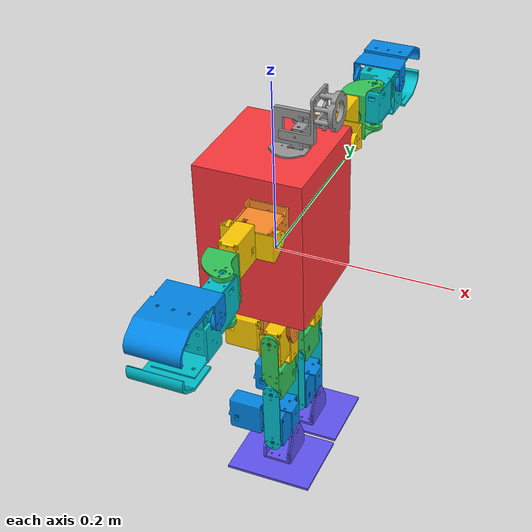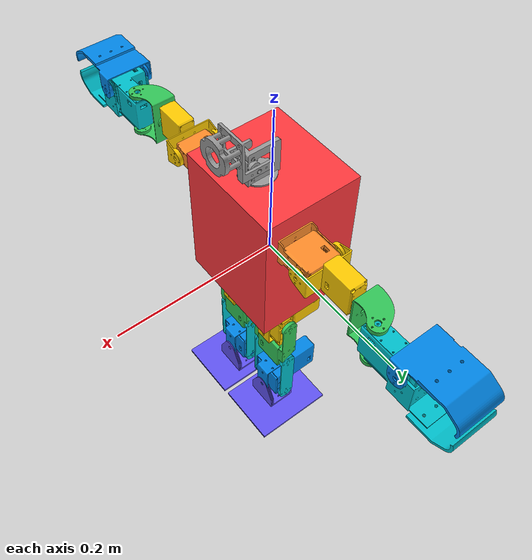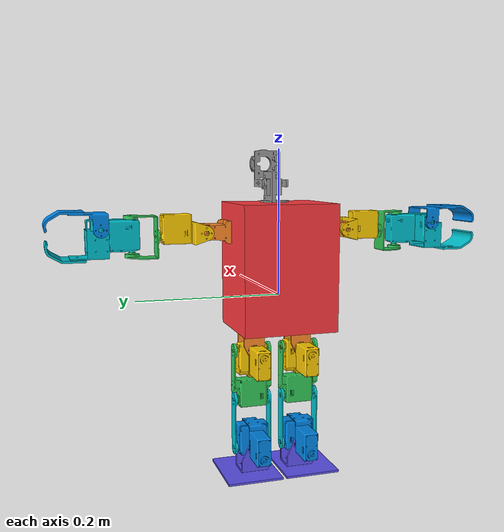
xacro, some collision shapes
<?xml version="1.0" ?>
<robot xmlns:xacro="http://ros.org/wiki/xacro" name="rhphumanoid">

  <xacro:arg name="use_gazebo" default="false" />
  <xacro:arg name="head_only" default="false" />
  <xacro:arg name="serial_ports" default="auto" />
  <xacro:arg name="servo_read_mode" default="initial" />
  <xacro:arg name="servo_reads_per_cycle" default="0" />

  <xacro:include filename="$(find rhphumanoid_description)/urdf/rhphumanoid.visuals.xacro" />
  <xacro:include filename="$(find rhphumanoid_description)/urdf/rhphumanoid.inertia.xacro" />

  <xacro:include filename="$(find rhphumanoid_description)/urdf/rhphumanoid.structure.rarm.xacro" />
  <xacro:include filename="$(find rhphumanoid_description)/urdf/rhphumanoid.structure.larm.xacro" />

  <xacro:include filename="$(find rhphumanoid_description)/urdf/rhphumanoid.structure.rleg.xacro" />
  <xacro:include filename="$(find rhphumanoid_description)/urdf/rhphumanoid.structure.lleg.xacro" />

  <xacro:include filename="$(find rhphumanoid_description)/urdf/rhphumanoid.structure.head.xacro" />

  <xacro:include filename="$(find rhphumanoid_description)/ros2_control/rhphumanoid.ros2_control.xacro" />

  <link name="base_link"/>

  <joint name="base_to_body_joint" type="fixed">
    <parent link="base_link"/>
    <child link="body_link"/>
    <origin xyz="0 0 0" rpy="0 0 0"/>
  </joint>

  <!-- body link -->
  <link name="body_link">
    <visual>
      <xacro:insert_mesh_body_link />
    </visual>
    <collision>
      <origin xyz="0.0000 0.0000 0.0407" rpy="0 0 0"/>
      <geometry>
        <box size="0.1190 0.1321 0.1745"/>
      </geometry>
    </collision>
    <inertial>
      <xacro:insert_inertia_body_link />
    </inertial>
  </link>

  <!-- arm link -->
  <xacro:rhphumanoid_r_arm parent="body_link" />
  <xacro:rhphumanoid_l_arm parent="body_link" />

  <!-- leg link -->
  <xacro:rhphumanoid_r_leg parent="body_link" />
  <xacro:rhphumanoid_l_leg parent="body_link" />
  <xacro:rhphumanoid_ros2_control name="RHPHumanoid" use_gazebo="$(arg use_gazebo)" head_only="$(arg head_only)"
    serial_ports="$(arg serial_ports)" servo_read_mode="$(arg servo_read_mode)" servo_reads_per_cycle="$(arg servo_reads_per_cycle)" />

  <!-- head links -->
  <xacro:rhphumanoid_head parent="body_link" />

  <xacro:if value="$(arg use_gazebo)">
    <xacro:include filename="rhphumanoid.gazebo.xacro" />
    <xacro:rhphumanoid_gazebo />
  </xacro:if>

</robot>

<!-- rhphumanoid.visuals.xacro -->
<robot xmlns:xacro="http://ros.org/wiki/xacro">

  <!-- body link -->
  <xacro:macro name="insert_mesh_body_link">
    <origin xyz="0 0 0" rpy="0 0 0" />
    <geometry>
      <mesh filename="package://rhphumanoid_description/meshes/body.stl"  scale="0.001 0.001 0.001"/>
    </geometry>
    <material name="Red">
      <color rgba="1.00 0.22 0.24 1.0"/>
    </material>
  </xacro:macro>

  <!-- right hip yaw link -->
  <xacro:macro name="insert_mesh_r_hip_yaw_link">
    <origin xyz="0 0 0" rpy="0 0 0" />
    <geometry>
      <mesh filename="package://rhphumanoid_description/meshes/rl1.stl"  scale="0.001 0.001 0.001"/>
    </geometry>
    <material name="Orange">
      <color rgba="1.00 0.55 0.16 1.0"/>
    </material>
  </xacro:macro>

  <!-- right hip roll link -->
  <xacro:macro name="insert_mesh_r_hip_roll_link">
    <origin xyz="0 0 0" rpy="0 0 0" />
    <geometry>
      <mesh filename="package://rhphumanoid_description/meshes/rl2.stl"  scale="0.001 0.001 0.001"/>
    </geometry>
    <material name="Yellow">
      <color rgba="1.00 0.80 0.00 1.0"/>
    </material>
  </xacro:macro>

  <!-- right hip pitch link -->
  <xacro:macro name="insert_mesh_r_hip_pitch_link">
    <origin xyz="0 0 0" rpy="0 0 0" />
    <geometry>
      <mesh filename="package://rhphumanoid_description/meshes/rl3.stl"  scale="0.001 0.001 0.001"/>
    </geometry>
    <material name="Green">
      <color rgba="0.20 0.78 0.35 1.0"/>
    </material>
  </xacro:macro>

  <!-- right knee link -->
  <xacro:macro name="insert_mesh_r_knee_link">
    <origin xyz="0 0 0" rpy="0 0 0" />
    <geometry>
      <mesh filename="package://rhphumanoid_description/meshes/rl4.stl"  scale="0.001 0.001 0.001"/>
    </geometry>
    <material name="Teal">
      <color rgba="0.00 0.76 0.81 1.0"/>
    </material>
  </xacro:macro>

  <!-- right ankle pitch link -->
  <xacro:macro name="insert_mesh_r_ank_pitch_link">
    <origin xyz="0 0 0" rpy="0 0 0" />
    <geometry>
      <mesh filename="package://rhphumanoid_description/meshes/rl5.stl"  scale="0.001 0.001 0.001"/>
    </geometry>
    <material name="Blue">
      <color rgba="0.00 0.53 0.91 1.0"/>
    </material>
  </xacro:macro>

  <!-- right ankle roll link -->
  <xacro:macro name="insert_mesh_r_ank_roll_link">
    <origin xyz="0 0 0" rpy="0 0 0" />
    <geometry>
      <mesh filename="package://rhphumanoid_description/meshes/rl6.stl"  scale="0.001 0.001 0.001"/>
    </geometry>
    <material name="Indigo">
      <color rgba="0.38 0.33 0.96 1.0"/>
    </material>
  </xacro:macro>

  <!-- left hip yaw link -->
  <xacro:macro name="insert_mesh_l_hip_yaw_link">
    <origin xyz="0 0 0" rpy="0 0 0" />
    <geometry>
      <mesh filename="package://rhphumanoid_description/meshes/ll1.stl"  scale="0.001 0.001 0.001"/>
    </geometry>
    <material name="Orange">
      <color rgba="1.00 0.55 0.16 1.0"/>
    </material>
  </xacro:macro>

  <!-- left hip roll link -->
  <xacro:macro name="insert_mesh_l_hip_roll_link">
    <origin xyz="0 0 0" rpy="0 0 0" />
    <geometry>
      <mesh filename="package://rhphumanoid_description/meshes/ll2.stl"  scale="0.001 0.001 0.001"/>
    </geometry>
    <material name="Yellow">
      <color rgba="1.00 0.80 0.00 1.0"/>
    </material>
  </xacro:macro>

  <!-- left hip pitch link -->
  <xacro:macro name="insert_mesh_l_hip_pitch_link">
    <origin xyz="0 0 0" rpy="0 0 0" />
    <geometry>
      <mesh filename="package://rhphumanoid_description/meshes/ll3.stl"  scale="0.001 0.001 0.001"/>
    </geometry>
    <material name="Green">
      <color rgba="0.20 0.78 0.35 1.0"/>
    </material>
  </xacro:macro>

  <!-- left knee link -->
  <xacro:macro name="insert_mesh_l_knee_link">
    <origin xyz="0 0 0" rpy="0 0 0" />
    <geometry>
      <mesh filename="package://rhphumanoid_description/meshes/ll4.stl"  scale="0.001 0.001 0.001"/>
    </geometry>
    <material name="Teal">
      <color rgba="0.00 0.76 0.81 1.0"/>
    </material>
  </xacro:macro>

  <!-- left ankle pitch link -->
  <xacro:macro name="insert_mesh_l_ank_pitch_link">
    <origin xyz="0 0 0" rpy="0 0 0" />
    <geometry>
      <mesh filename="package://rhphumanoid_description/meshes/ll5.stl"  scale="0.001 0.001 0.001"/>
    </geometry>
    <material name="Blue">
      <color rgba="0.00 0.53 0.91 1.0"/>
    </material>
  </xacro:macro>

  <!-- left ankle roll link -->
  <xacro:macro name="insert_mesh_l_ank_roll_link">
    <origin xyz="0 0 0" rpy="0 0 0" />
    <geometry>
      <mesh filename="package://rhphumanoid_description/meshes/ll6.stl"  scale="0.001 0.001 0.001"/>
    </geometry>
    <material name="Indigo">
      <color rgba="0.38 0.33 0.96 1.0"/>
    </material>
  </xacro:macro>

  <!-- right shoulder pitch joint -->
  <xacro:macro name="insert_mesh_r_sho_pitch_link">
    <origin xyz="0 0 0" rpy="0 0 0" />
    <geometry>
      <mesh filename="package://rhphumanoid_description/meshes/ra1.stl"  scale="0.001 0.001 0.001"/>
    </geometry>
    <material name="Orange">
      <color rgba="1.00 0.55 0.16 1.0"/>
    </material>
  </xacro:macro>

  <!-- right shoulder roll joint -->
  <xacro:macro name="insert_mesh_r_sho_roll_link">
    <origin xyz="0 0 0" rpy="0 0 0" />
    <geometry>
      <mesh filename="package://rhphumanoid_description/meshes/ra2.stl"  scale="0.001 0.001 0.001"/>
    </geometry>
    <material name="Yellow">
      <color rgba="1.00 0.80 0.00 1.0"/>
    </material>
  </xacro:macro>

  <!-- right elbow joint -->
  <xacro:macro name="insert_mesh_r_el_link">
    <origin xyz="0 0 0" rpy="0 0 0" />
    <geometry>
      <mesh filename="package://rhphumanoid_description/meshes/ra3.stl"  scale="0.001 0.001 0.001"/>
    </geometry>
    <material name="Green">
      <color rgba="0.20 0.78 0.35 1.0"/>
    </material>
  </xacro:macro>

  <!-- right wrist joint -->
  <xacro:macro name="insert_mesh_r_wst_link">
    <origin xyz="0 0 0" rpy="0 0 0" />
    <geometry>
      <mesh filename="package://rhphumanoid_description/meshes/ra4.stl"  scale="0.001 0.001 0.001"/>
    </geometry>
    <material name="Teal">
      <color rgba="0.00 0.76 0.81 1.0"/>
    </material>
  </xacro:macro>

  <!-- right gripper joint -->
  <xacro:macro name="insert_mesh_r_grp_link">
    <origin xyz="0 0 0" rpy="0 0 0" />
    <geometry>
      <mesh filename="package://rhphumanoid_description/meshes/ra5.stl"  scale="0.001 0.001 0.001"/>
    </geometry>
    <material name="Blue">
      <color rgba="0.00 0.53 0.91 1.0"/>
    </material>
  </xacro:macro>

  <!-- left shoulder pitch joint -->
  <xacro:macro name="insert_mesh_l_sho_pitch_link">
    <origin xyz="0 0 0" rpy="0 0 0" />
    <geometry>
      <mesh filename="package://rhphumanoid_description/meshes/la1.stl"  scale="0.001 0.001 0.001"/>
    </geometry>
    <material name="Orange">
      <color rgba="1.00 0.55 0.16 1.0"/>
    </material>
  </xacro:macro>

  <!-- left shoulder roll joint -->
  <xacro:macro name="insert_mesh_l_sho_roll_link">
    <origin xyz="0 0 0" rpy="0 0 0" />
    <geometry>
      <mesh filename="package://rhphumanoid_description/meshes/la2.stl"  scale="0.001 0.001 0.001"/>
    </geometry>
    <material name="Yellow">
      <color rgba="1.00 0.80 0.00 1.0"/>
    </material>
  </xacro:macro>

  <!-- left elbow joint -->
  <xacro:macro name="insert_mesh_l_el_link">
    <origin xyz="0 0 0" rpy="0 0 0" />
    <geometry>
      <mesh filename="package://rhphumanoid_description/meshes/la3.stl"  scale="0.001 0.001 0.001"/>
    </geometry>
    <material name="Green">
      <color rgba="0.20 0.78 0.35 1.0"/>
    </material>
  </xacro:macro>

  <!-- left wrist joint -->
  <xacro:macro name="insert_mesh_l_wst_link">
    <origin xyz="0 0 0" rpy="0 0 0" />
    <geometry>
      <mesh filename="package://rhphumanoid_description/meshes/la4.stl"  scale="0.001 0.001 0.001"/>
    </geometry>
    <material name="Teal">
      <color rgba="0.00 0.76 0.81 1.0"/>
    </material>
  </xacro:macro>

  <!-- left gripper joint -->
  <xacro:macro name="insert_mesh_l_grp_link">
    <origin xyz="0 0 0" rpy="0 0 0" />
    <geometry>
      <mesh filename="package://rhphumanoid_description/meshes/la5.stl"  scale="0.001 0.001 0.001"/>
    </geometry>
    <material name="Blue">
      <color rgba="0.00 0.53 0.91 1.0"/>
    </material>
  </xacro:macro>

  <!-- head yaw joint -->
  <xacro:macro name="insert_mesh_head_pan_link">
    <origin xyz="0 0 0" rpy="0 0 0" />
    <geometry>
      <mesh filename="package://rhphumanoid_description/meshes/head_pan.stl"  scale="0.001 0.001 0.001"/>
    </geometry>
    <material name="Grey">
      <color rgba="0.60 0.60 0.60 1.0"/>
    </material>
  </xacro:macro>

  <!-- head yaw joint -->
  <xacro:macro name="insert_mesh_head_tilt_link">
    <origin xyz="0 0 0" rpy="0 0 0" />
    <geometry>
      <mesh filename="package://rhphumanoid_description/meshes/head_tilt.stl"  scale="0.001 0.001 0.001"/>
    </geometry>
    <material name="Grey">
      <color rgba="0.60 0.60 0.60 1.0"/>
    </material>
  </xacro:macro>

</robot>

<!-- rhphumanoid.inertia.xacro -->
<robot xmlns:xacro="http://ros.org/wiki/xacro">

  <!-- body link -->
  <xacro:macro name="insert_inertia_body_link">
    <origin xyz="0.00581692 -0.00007490 0.04314852" />
    <mass value="0.91591488"/>
    <inertia ixx="0.00296773" ixy="-0.00000063" ixz="-0.00002043"
             iyy="0.00226577" iyz="-0.00000088"
             izz="0.00194033" />
  </xacro:macro>

  <!-- right hip yaw link -->
  <xacro:macro name="insert_inertia_r_hip_yaw_link">
    <origin xyz="0.00052183 -0.00000000 -0.01602857" />
    <mass value="0.02881495"/>
    <inertia ixx="0.00000727" ixy="0.00000000" ixz="-0.00000066"
             iyy="0.00001091" iyz="0.00000000"
             izz="0.00000725" />
  </xacro:macro>

  <!-- right hip roll link -->
  <xacro:macro name="insert_inertia_r_hip_roll_link">
    <origin xyz="-0.00202596 -0.00011814 -0.01157439" />
    <mass value="0.14242527"/>
    <inertia ixx="0.00003551" ixy="0.00000031" ixz="0.00000334"
             iyy="0.00009572" iyz="0.00000016"
             izz="0.00008748" />
  </xacro:macro>

  <!-- right hip pitch link -->
  <xacro:macro name="insert_inertia_r_hip_pitch_link">
    <origin xyz="0.00008836 0.02480600 -0.05400149" />
    <mass value="0.08081343"/>
    <inertia ixx="0.00005586" ixy="0.00000002" ixz="0.00000003"
             iyy="0.00003841" iyz="0.00000077"
             izz="0.00002280" />
  </xacro:macro>

  <!-- right knee link -->
  <xacro:macro name="insert_inertia_r_knee_link">
    <origin xyz="0.00000000 0.02354912 -0.03605027" />
    <mass value="0.02105152"/>
    <inertia ixx="0.00003212" ixy="-0.00000000" ixz="0.00000000"
             iyy="0.00001890" iyz="0.00000000"
             izz="0.00001449" />
  </xacro:macro>

  <!-- right ankle pitch link -->
  <xacro:macro name="insert_inertia_r_ank_pitch_link">
    <origin xyz="-0.01829693 0.02530226 0.01171548" />
    <mass value="0.14291127"/>
    <inertia ixx="0.00003629" ixy="0.00000031" ixz="-0.00000369"
             iyy="0.00009662" iyz="-0.00000016"
             izz="0.00008783" />
  </xacro:macro>

  <!-- right ankle roll link -->
  <xacro:macro name="insert_inertia_r_ank_roll_link">
    <origin xyz="0.01671434 -0.00532216 -0.03092139" />
    <mass value="0.09740398"/>
    <inertia ixx="0.00005112" ixy="0.00000026" ixz="0.00000128"
             iyy="0.00007219" iyz="-0.00000289"
             izz="0.00009987" />
  </xacro:macro>

  <!-- left hip yaw link -->
  <xacro:macro name="insert_inertia_l_hip_yaw_link">
    <origin xyz="0.00052183 0.00000000 -0.01602857" />
    <mass value="0.02881495"/>
    <inertia ixx="0.00000727" ixy="-0.00000000" ixz="-0.00000066"
             iyy="0.00001091" iyz="-0.00000000"
             izz="0.00000725" />
  </xacro:macro>

  <!-- left hip roll link -->
  <xacro:macro name="insert_inertia_l_hip_roll_link">
    <origin xyz="-0.00202596 0.00011814 -0.01157439" />
    <mass value="0.14242527"/>
    <inertia ixx="0.00003551" ixy="-0.00000031" ixz="0.00000334"
             iyy="0.00009572" iyz="-0.00000016"
             izz="0.00008748" />
  </xacro:macro>

  <!-- left hip pitch link -->
  <xacro:macro name="insert_inertia_l_hip_pitch_link">
    <origin xyz="0.00008836 -0.02480600 -0.05400149" />
    <mass value="0.08081343"/>
    <inertia ixx="0.00005586" ixy="-0.00000002" ixz="0.00000003"
             iyy="0.00003841" iyz="-0.00000077"
             izz="0.00002280" />
  </xacro:macro>

  <!-- left knee link -->
  <xacro:macro name="insert_inertia_l_knee_link">
    <origin xyz="0.00000000 -0.02354912 -0.03605027" />
    <mass value="0.02105152"/>
    <inertia ixx="0.00003212" ixy="0.00000000" ixz="0.00000000"
             iyy="0.00001890" iyz="-0.00000000"
             izz="0.00001449" />
  </xacro:macro>

  <!-- left ankle pitch link -->
  <xacro:macro name="insert_inertia_l_ank_pitch_link">
    <origin xyz="-0.01829693 -0.02530226 0.01171548" />
    <mass value="0.14291127"/>
    <inertia ixx="0.00003629" ixy="-0.00000031" ixz="-0.00000369"
             iyy="0.00009662" iyz="0.00000016"
             izz="0.00008783" />
  </xacro:macro>

  <!-- left ankle roll link -->
  <xacro:macro name="insert_inertia_l_ank_roll_link">
    <origin xyz="0.01671434 0.00532216 -0.03092139" />
    <mass value="0.09740398"/>
    <inertia ixx="0.00005112" ixy="-0.00000026" ixz="0.00000128"
             iyy="0.00007219" iyz="0.00000289"
             izz="0.00009987" />
  </xacro:macro>

  <!-- right shoulder pitch joint -->
  <xacro:macro name="insert_inertia_r_sho_pitch_link">
    <origin xyz="0.00022228 -0.02414154 -0.00000000" />
    <mass value="0.07569844"/>
    <inertia ixx="0.00001677" ixy="0.00000019" ixz="0.00000000"
             iyy="0.00001483" iyz="0.00000000"
             izz="0.00002596" />
  </xacro:macro>

  <!-- right shoulder roll joint -->
  <xacro:macro name="insert_inertia_r_sho_roll_link">
    <origin xyz="-0.02515925 -0.00406166 -0.03023989" />
    <mass value="0.07715846"/>
    <inertia ixx="0.00002972" ixy="-0.00000001" ixz="-0.00000007"
             iyy="0.00003120" iyz="-0.00000173"
             izz="0.00001976" />
  </xacro:macro>

  <!-- right elbow joint -->
  <xacro:macro name="insert_inertia_r_el_link">
    <origin xyz="0.00482938 0.00010112 -0.01656610" />
    <mass value="0.02341117"/>
    <inertia ixx="0.00001738" ixy="-0.00000002" ixz="0.00000189"
             iyy="0.00000724" iyz="0.00000004"
             izz="0.00001457" />
  </xacro:macro>

  <!-- right wrist joint -->
  <xacro:macro name="insert_inertia_r_wst_link">
    <origin xyz="-0.00570935 -0.02184298 -0.03538043" />
    <mass value="0.17451803"/>
    <inertia ixx="0.00014246" ixy="0.00000279" ixz="-0.00001572"
             iyy="0.00013373" iyz="0.00001984"
             izz="0.00006108" />
  </xacro:macro>

  <!-- right gripper joint -->
  <xacro:macro name="insert_inertia_r_grp_link">
    <origin xyz="-0.02511399 -0.01352556 -0.02144614" />
    <mass value="0.03120920"/>
    <inertia ixx="0.00002139" ixy="-0.00000003" ixz="-0.00000005"
             iyy="0.00003065" iyz="-0.00000206"
             izz="0.00001499" />
  </xacro:macro>

  <!-- left shoulder pitch joint -->
  <xacro:macro name="insert_inertia_l_sho_pitch_link">
    <origin xyz="0.00022228 0.02414154 -0.00000000" />
    <mass value="0.07569844"/>
    <inertia ixx="0.00001677" ixy="-0.00000019" ixz="0.00000000"
             iyy="0.00001483" iyz="-0.00000000"
             izz="0.00002596" />
  </xacro:macro>

  <!-- left shoulder roll joint -->
  <xacro:macro name="insert_inertia_l_sho_roll_link">
    <origin xyz="-0.02515925 0.00406166 -0.03023989" />
    <mass value="0.07715846"/>
    <inertia ixx="0.00002972" ixy="0.00000001" ixz="-0.00000007"
             iyy="0.00003120" iyz="0.00000173"
             izz="0.00001976" />
  </xacro:macro>

  <!-- left elbow joint -->
  <xacro:macro name="insert_inertia_l_el_link">
    <origin xyz="0.00482938 -0.00010112 -0.01656610" />
    <mass value="0.02341117"/>
    <inertia ixx="0.00001738" ixy="0.00000002" ixz="0.00000189"
             iyy="0.00000724" iyz="-0.00000004"
             izz="0.00001457" />
  </xacro:macro>

  <!-- left wrist joint -->
  <xacro:macro name="insert_inertia_l_wst_link">
    <origin xyz="-0.00570935 0.02184298 -0.03538043" />
    <mass value="0.17451803"/>
    <inertia ixx="0.00014246" ixy="-0.00000279" ixz="-0.00001572"
             iyy="0.00013373" iyz="-0.00001984"
             izz="0.00006108" />
  </xacro:macro>

  <!-- left gripper joint -->
  <xacro:macro name="insert_inertia_l_grp_link">
    <origin xyz="-0.02511399 0.01352556 -0.02144614" />
    <mass value="0.03120920"/>
    <inertia ixx="0.00002139" ixy="0.00000003" ixz="-0.00000005"
             iyy="0.00003065" iyz="0.00000206"
             izz="0.00001499" />
  </xacro:macro>

  <!-- head yaw joint -->
  <xacro:macro name="insert_inertia_head_pan_link">
    <origin xyz="0.00416602 0.00168477 0.00322464" />
    <mass value="0.02021093"/>
    <inertia ixx="0.00000598" ixy="0.00000027" ixz="-0.00000079"
             iyy="0.00000721" iyz="-0.00000044"
             izz="0.00000469" />
  </xacro:macro>

  <!-- head pitch joint -->
  <xacro:macro name="insert_inertia_head_tilt_link">
    <origin xyz="0.02426708 -0.01558055 0.02112161" />
    <mass value="0.01056821"/>
    <inertia ixx="0.00000420" ixy="-0.00000016" ixz="-0.00000123"
             iyy="0.00000444" iyz="-0.00000015"
             izz="0.00000394" />
  </xacro:macro>

</robot>

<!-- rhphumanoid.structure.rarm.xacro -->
<robot xmlns:xacro="http://ros.org/wiki/xacro">

  <!-- right arm -->
  <xacro:macro name="rhphumanoid_r_arm" params="parent">

  <!-- right shoulder pitch joint -->
  <joint name="r_sho_pitch" type="revolute">
    <parent link="${parent}"/>
    <child link="r_sho_pitch_link"/>
    <origin xyz="0.024070 -0.065170 0.088500" rpy="0 0 0" />
    <axis xyz="0 -1 0" />
    <limit effort="${45*9.80665/100}" velocity="${(pi/3)/0.18}" lower="${-pi*2/3}" upper="${pi*2/3}" />
    <dynamics damping="0.1" friction="0.0" />
  </joint>

  <!-- right shoulder pitch link -->
  <link name="r_sho_pitch_link">
    <visual>
      <xacro:insert_mesh_r_sho_pitch_link />
    </visual>
    <collision>
      <origin xyz="-0.0001 -0.0220 0.0000" rpy="0 0 0"/>
      <geometry>
        <box size="0.0510 0.0511 0.0300"/>
      </geometry>
    </collision>
    <inertial>
      <xacro:insert_inertia_r_sho_pitch_link />
    </inertial>
  </link>

  <!-- right shoulder roll joint -->
  <joint name="r_sho_roll" type="revolute">
    <parent link="r_sho_pitch_link"/>
    <child link="r_sho_roll_link"/>
    <origin xyz="0.025420 -0.037500 0.000000" rpy="${-pi/2} 0 0" />
    <axis xyz="1 0 0" />
    <limit effort="${45*9.80665/100}" velocity="${(pi/3)/0.18}" lower="-1.8" upper="1.8" />
    <dynamics damping="0.1" friction="0.0" />
  </joint>

  <!-- right shoulder roll link -->
  <link name="r_sho_roll_link">
    <visual>
      <xacro:insert_mesh_r_sho_roll_link />
    </visual>
    <collision>
      <origin xyz="-0.0252 -0.0051 -0.0259" rpy="0 0 0"/>
      <geometry>
        <box size="0.0572 0.0401 0.0716"/>
      </geometry>
    </collision>
    <inertial>
      <xacro:insert_inertia_r_sho_roll_link />
    </inertial>
  </link>

  <!-- right elbow joint -->
  <joint name="r_el" type="revolute">
    <parent link="r_sho_roll_link"/>
    <child link="r_el_link"/>
    <origin xyz="-0.025190 0.005000 -0.061670" rpy="0 0 0" />
    <axis xyz="0 0 -1" />
    <limit effort="${45*9.80665/100}" velocity="${(pi/3)/0.18}" lower="${-pi*2/3}" upper="${pi*2/3}" />
    <dynamics damping="0.1" friction="0.0" />
  </joint>

  <!-- right elbow link -->
  <link name="r_el_link">
    <visual>
      <xacro:insert_mesh_r_el_link />
    </visual>
    <collision>
      <origin xyz="0.0044 0.0000 -0.0196" rpy="0 0 0"/>
      <geometry>
        <box size="0.0391 0.0572 0.0465"/>
      </geometry>
    </collision>
    <inertial>
      <xacro:insert_inertia_r_el_link />
    </inertial>
  </link>

  <!-- right wrist joint -->
  <joint name="r_wst" type="revolute">
    <parent link="r_el_link"/>
    <child link="r_wst_link"/>
    <origin xyz="0.014000 0.023610 -0.032830" rpy="0 0 0" />
    <axis xyz="0 -1 0" />
    <limit effort="${45*9.80665/100}" velocity="${(pi/3)/0.18}" lower="${-pi/2}" upper="${pi*2/3}" />
    <dynamics damping="0.1" friction="0.0" />
  </joint>

  <!-- right wrist link -->
  <link name="r_wst_link">
    <visual>
      <xacro:insert_mesh_r_wst_link />
    </visual>
    <collision>
      <origin xyz="-0.0102 -0.0228 -0.0520" rpy="0 0 0"/>
      <geometry>
        <box size="0.0536 0.0564 0.1241"/>
      </geometry>
    </collision>
    <inertial>
      <xacro:insert_inertia_r_wst_link />
    </inertial>
  </link>

  <!-- right gripper joint -->
  <joint name="r_grp" type="revolute">
    <parent link="r_wst_link"/>
    <child link="r_grp_link"/>
    <origin xyz="0.015240 -0.035670 -0.043170" rpy="0 0 0" />
    <axis xyz="1 0 0" />
    <limit effort="${45*9.80665/100}" velocity="${(pi/3)/0.18}" lower="-0.5" upper="0.2" />
    <dynamics damping="0.1" friction="0.0" />
  </joint>

  <!-- right gripper link -->
  <link name="r_grp_link">
    <visual>
      <xacro:insert_mesh_r_grp_link />
    </visual>
    <collision>
      <origin xyz="-0.0252 -0.0070 -0.0305" rpy="0 0 0"/>
      <geometry>
        <box size="0.0572 0.0340 0.0810"/>
      </geometry>
    </collision>
    <inertial>
      <xacro:insert_inertia_r_grp_link />
    </inertial>
  </link>

  </xacro:macro>

</robot>

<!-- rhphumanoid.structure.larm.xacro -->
<robot xmlns:xacro="http://ros.org/wiki/xacro">

  <!-- left leg -->
  <xacro:macro name="rhphumanoid_l_arm" params="parent">

  <!-- left shoulder pitch joint -->
  <joint name="l_sho_pitch" type="revolute">
    <parent link="${parent}"/>
    <child link="l_sho_pitch_link"/>
    <origin xyz="0.024070 0.065170 0.088500" rpy="0 0 0" />
    <axis xyz="0 1 0" />
    <limit effort="${45*9.80665/100}" velocity="${(pi/3)/0.18}" lower="${-pi*2/3}" upper="${pi*2/3}" />
    <dynamics damping="0.1" friction="0.0" />
  </joint>

  <!-- left shoulder pitch link -->
  <link name="l_sho_pitch_link">
    <visual>
      <xacro:insert_mesh_l_sho_pitch_link />
    </visual>
    <collision>
      <origin xyz="-0.0001 0.0220 0.0000" rpy="0 0 0"/>
      <geometry>
        <box size="0.0510 0.0511 0.0300"/>
      </geometry>
    </collision>
    <inertial>
      <xacro:insert_inertia_l_sho_pitch_link />
    </inertial>
  </link>

  <!-- left shoulder roll joint -->
  <joint name="l_sho_roll" type="revolute">
    <parent link="l_sho_pitch_link"/>
    <child link="l_sho_roll_link"/>
    <origin xyz="0.025420 0.037500 0.000000" rpy="${pi/2} 0 0" />
    <axis xyz="1 0 0" />
    <limit effort="${45*9.80665/100}" velocity="${(pi/3)/0.18}" lower="-1.8" upper="1.8" />
    <dynamics damping="0.1" friction="0.0" />
  </joint>

  <!-- left shoulder roll link -->
  <link name="l_sho_roll_link">
    <visual>
      <xacro:insert_mesh_l_sho_roll_link />
    </visual>
    <collision>
      <origin xyz="-0.0252 0.0051 -0.0259" rpy="0 0 0"/>
      <geometry>
        <box size="0.0572 0.0401 0.0716"/>
      </geometry>
    </collision>
    <inertial>
      <xacro:insert_inertia_l_sho_roll_link />
    </inertial>
  </link>

  <!-- left elbow joint -->
  <joint name="l_el" type="revolute">
    <parent link="l_sho_roll_link"/>
    <child link="l_el_link"/>
    <origin xyz="-0.025190 -0.005000 -0.061670" rpy="0 0 0" />
    <axis xyz="0 0 -1" />
    <limit effort="${45*9.80665/100}" velocity="${(pi/3)/0.18}" lower="${-pi*2/3}" upper="${pi*2/3}" />
    <dynamics damping="0.1" friction="0.0" />
  </joint>

  <!-- left elbow link -->
  <link name="l_el_link">
    <visual>
      <xacro:insert_mesh_l_el_link />
    </visual>
    <collision>
      <origin xyz="0.0044 0.0000 -0.0196" rpy="0 0 0"/>
      <geometry>
        <box size="0.0391 0.0572 0.0465"/>
      </geometry>
    </collision>
    <inertial>
      <xacro:insert_inertia_l_el_link />
    </inertial>
  </link>

  <!-- left wrist joint -->
  <joint name="l_wst" type="revolute">
    <parent link="l_el_link"/>
    <child link="l_wst_link"/>
    <origin xyz="0.014000 -0.023610 -0.032830" rpy="0 0 0" />
    <axis xyz="0 1 0" />
    <limit effort="${45*9.80665/100}" velocity="${(pi/3)/0.18}" lower="${-pi/2}" upper="${pi*2/3}" />
    <dynamics damping="0.1" friction="0.0" />
  </joint>

  <!-- left wrist link -->
  <link name="l_wst_link">
    <visual>
      <xacro:insert_mesh_l_wst_link />
    </visual>
    <collision>
      <origin xyz="-0.0102 0.0228 -0.0520" rpy="0 0 0"/>
      <geometry>
        <box size="0.0536 0.0564 0.1241"/>
      </geometry>
    </collision>
    <inertial>
      <xacro:insert_inertia_l_wst_link />
    </inertial>
  </link>

  <!-- left gripper joint -->
  <joint name="l_grp" type="revolute">
    <parent link="l_wst_link"/>
    <child link="l_grp_link"/>
    <origin xyz="0.015240 0.035670 -0.043170" rpy="0 0 0" />
    <axis xyz="1 0 0" />
    <limit effort="${45*9.80665/100}" velocity="${(pi/3)/0.18}" lower="-0.5" upper="0.2" />
    <dynamics damping="0.1" friction="0.0" />
  </joint>

  <!-- left gripeper link -->
  <link name="l_grp_link">
    <visual>
      <xacro:insert_mesh_l_grp_link />
    </visual>
    <collision>
      <origin xyz="-0.0252 0.0070 -0.0305" rpy="0 0 0"/>
      <geometry>
        <box size="0.0572 0.0340 0.0810"/>
      </geometry>
    </collision>
    <inertial>
      <xacro:insert_inertia_l_grp_link />
    </inertial>
  </link>

  </xacro:macro>

</robot>

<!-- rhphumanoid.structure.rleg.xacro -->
<robot xmlns:xacro="http://ros.org/wiki/xacro">

  <!-- right leg -->
  <xacro:macro name="rhphumanoid_r_leg" params="parent">

  <!-- right hip yaw joint -->
  <joint name="r_hip_yaw" type="revolute">
    <parent link="${parent}"/>
    <child link="r_hip_yaw_link"/>
    <origin xyz="0.017000 -0.034930 -0.045670" rpy="0 0 0" />
    <axis xyz="0 0 -1" />
    <limit effort="${45*9.80665/100}" velocity="${(pi/3)/0.18}" lower="${-pi*2/3}" upper="${pi*2/3}" />
    <dynamics damping="0.1" friction="0.0" />
  </joint>

  <!-- right hip yaw link -->
  <link name="r_hip_yaw_link">
    <visual>
      <xacro:insert_mesh_r_hip_yaw_link />
    </visual>
    <collision>
      <origin xyz="0.0000 0.0000 -0.0209" rpy="0 0 0"/>
      <geometry>
        <box size="0.0389 0.0300 0.0490"/>
      </geometry>
    </collision>
    <inertial>
      <xacro:insert_inertia_r_hip_yaw_link />
    </inertial>
  </link>

  <!-- right hip roll joint -->
  <joint name="r_hip_roll" type="revolute">
    <parent link="r_hip_yaw_link"/>
    <child link="r_hip_roll_link"/>
    <origin xyz="-0.015830 0.000000 -0.035400" rpy="0 0 0" />
    <axis xyz="-1 0 0" />
    <limit effort="${45*9.80665/100}" velocity="${(pi/3)/0.18}" lower="-2" upper="2" />
    <dynamics damping="0.1" friction="0.0" />
  </joint>

  <!-- right hip roll link -->
  <link name="r_hip_roll_link">
    <visual>
      <xacro:insert_mesh_r_hip_roll_link />
    </visual>
    <collision>
      <origin xyz="-0.0086 0.0001 -0.0125" rpy="0 0 0"/>
      <geometry>
        <box size="0.0848 0.0510 0.0451"/>
      </geometry>
    </collision>
    <inertial>
      <xacro:insert_inertia_r_hip_roll_link />
    </inertial>
  </link>

  <!-- right hip pitch joint -->
  <joint name="r_hip_pitch" type="revolute">
    <parent link="r_hip_roll_link"/>
    <child link="r_hip_pitch_link"/>
    <origin xyz="0.016330 -0.025420 0.000000" rpy="0 0 0" />
    <axis xyz="0 -1 0" />
    <limit effort="${45*9.80665/100}" velocity="${(pi/3)/0.18}" lower="-0.5" upper="${pi*2/3}" />
    <dynamics damping="0.1" friction="0.0" />
  </joint>

  <!-- right hip pitch link -->
  <link name="r_hip_pitch_link">
    <visual>
      <xacro:insert_mesh_r_hip_pitch_link />
    </visual>
    <collision>
      <origin xyz="0.0000 0.0247 -0.0360" rpy="0 0 0"/>
      <geometry>
        <box size="0.0201 0.0543 0.0921"/>
      </geometry>
    </collision>
    <inertial>
      <xacro:insert_inertia_r_hip_pitch_link />
    </inertial>
  </link>

  <!-- right knee joint -->
  <joint name="r_knee" type="revolute">
    <parent link="r_hip_pitch_link"/>
    <child link="r_knee_link"/>
    <origin xyz="0.000000 0.000000 -0.072100" rpy="0 0 0" />
    <axis xyz="0 -1 0" />
    <limit effort="${45*9.80665/100}" velocity="${(pi/3)/0.18}" lower="${-pi*2/3}" upper="1.2" />
    <dynamics damping="0.1" friction="0.0" />
  </joint>

  <!-- right knee link -->
  <link name="r_knee_link">
    <visual>
      <xacro:insert_mesh_r_knee_link />
    </visual>
    <collision>
      <origin xyz="0.0000 0.0247 -0.0360" rpy="0 0 0"/>
      <geometry>
        <box size="0.0200 0.0543 0.0920"/>
      </geometry>
    </collision>
    <inertial>
      <xacro:insert_inertia_r_knee_link />
    </inertial>
  </link>

  <!-- right ankle pitch joint -->
  <joint name="r_ank_pitch" type="revolute">
    <parent link="r_knee_link"/>
    <child link="r_ank_pitch_link"/>
    <origin xyz="0.000000 0.000000 -0.072100" rpy="0 0 0" />
    <axis xyz="0 1 0" />
    <limit effort="${45*9.80665/100}" velocity="${(pi/3)/0.18}" lower="${-pi*2/3}" upper="${pi*2/3}" />
    <dynamics damping="0.1" friction="0.0" />
  </joint>

  <!-- right ankle pitch link -->
  <link name="r_ank_pitch_link">
    <visual>
      <xacro:insert_mesh_r_ank_pitch_link />
    </visual>
    <collision>
      <origin xyz="-0.0249 0.0255 0.0133" rpy="0 0 0"/>
      <geometry>
        <box size="0.0848 0.0510 0.0466"/>
      </geometry>
    </collision>
    <inertial>
      <xacro:insert_inertia_r_ank_pitch_link />
    </inertial>
  </link>

  <!-- right ankle roll joint -->
  <joint name="r_ank_roll" type="revolute">
    <parent link="r_ank_pitch_link"/>
    <child link="r_ank_roll_link"/>
    <origin xyz="-0.016330 0.025420 0.000000" rpy="0 0 0" />
    <axis xyz="1 0 0" />
    <limit effort="${45*9.80665/100}" velocity="${(pi/3)/0.18}" lower="-1.9" upper="1.9" />
    <dynamics damping="0.1" friction="0.0" />
  </joint>

  <!-- right ankle roll link -->
  <link name="r_ank_roll_link">
    <visual>
      <xacro:insert_mesh_r_ank_roll_link />
    </visual>
    <collision>
      <origin xyz="0.0181 -0.0080 -0.0140" rpy="0 0 0"/>
      <geometry>
        <box size="0.1000 0.0800 0.0480"/>
      </geometry>
    </collision>
    <inertial>
      <xacro:insert_inertia_r_ank_roll_link />
    </inertial>
  </link>

  </xacro:macro>

</robot>

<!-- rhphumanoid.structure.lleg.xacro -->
<robot xmlns:xacro="http://ros.org/wiki/xacro">

  <!-- left leg -->
  <xacro:macro name="rhphumanoid_l_leg" params="parent">

  <!-- left hip yaw joint -->
  <joint name="l_hip_yaw" type="revolute">
    <parent link="${parent}"/>
    <child link="l_hip_yaw_link"/>
    <origin xyz="0.017000 0.034930 -0.045670" rpy="0 0 0" />
    <axis xyz="0 0 -1" />
    <limit effort="${45*9.80665/100}" velocity="${(pi/3)/0.18}" lower="${-pi*2/3}" upper="${pi*2/3}" />
    <dynamics damping="0.1" friction="0.0" />
  </joint>

  <!-- left hip yaw link -->
  <link name="l_hip_yaw_link">
    <visual>
      <xacro:insert_mesh_l_hip_yaw_link />
    </visual>
    <collision>
      <origin xyz="0.0000 0.0000 -0.0209" rpy="0 0 0"/>
      <geometry>
        <box size="0.0389 0.0300 0.0490"/>
      </geometry>
    </collision>
    <inertial>
      <xacro:insert_inertia_l_hip_yaw_link />
    </inertial>
  </link>

  <!-- left hip roll joint -->
  <joint name="l_hip_roll" type="revolute">
    <parent link="l_hip_yaw_link"/>
    <child link="l_hip_roll_link"/>
    <origin xyz="-0.015830 0.000000 -0.035400" rpy="0 0 0" />
    <axis xyz="-1 0 0" />
    <limit effort="${45*9.80665/100}" velocity="${(pi/3)/0.18}" lower="-2.0" upper="2.0" />
    <dynamics damping="0.1" friction="0.0" />
  </joint>

  <!-- left hip roll link -->
  <link name="l_hip_roll_link">
    <visual>
      <xacro:insert_mesh_l_hip_roll_link />
    </visual>
    <collision>
      <origin xyz="-0.0086 -0.0001 -0.0125" rpy="0 0 0"/>
      <geometry>
        <box size="0.0848 0.0510 0.0451"/>
      </geometry>
    </collision>
    <inertial>
      <xacro:insert_inertia_l_hip_roll_link />
    </inertial>
  </link>

  <!-- left hip pitch joint -->
  <joint name="l_hip_pitch" type="revolute">
    <parent link="l_hip_roll_link"/>
    <child link="l_hip_pitch_link"/>
    <origin xyz="0.016330 0.025420 0.000000" rpy="0 0 0" />
    <axis xyz="0 1 0" />
    <limit effort="${45*9.80665/100}" velocity="${(pi/3)/0.18}" lower="-0.55" upper="${pi*2/3}" />
    <dynamics damping="0.1" friction="0.0" />
  </joint>

  <!-- left hip pitch link -->
  <link name="l_hip_pitch_link">
    <visual>
      <xacro:insert_mesh_l_hip_pitch_link />
    </visual>
    <collision>
      <origin xyz="0.0000 -0.0247 -0.0360" rpy="0 0 0"/>
      <geometry>
        <box size="0.0201 0.0543 0.0921"/>
      </geometry>
    </collision>
    <inertial>
      <xacro:insert_inertia_l_hip_pitch_link />
    </inertial>
  </link>

  <!-- left knee joint -->
  <joint name="l_knee" type="revolute">
    <parent link="l_hip_pitch_link"/>
    <child link="l_knee_link"/>
    <origin xyz="0.000000 0.000000 -0.072100" rpy="0 0 0" />
    <axis xyz="0 1 0" />
    <limit effort="${45*9.80665/100}" velocity="${(pi/3)/0.18}" lower="${-pi*2/3}" upper="1.2" />
    <dynamics damping="0.1" friction="0.0" />
  </joint>

  <!-- left knee link -->
  <link name="l_knee_link">
    <visual>
      <xacro:insert_mesh_l_knee_link />
    </visual>
    <collision>
      <origin xyz="0.0000 -0.0247 -0.0360" rpy="0 0 0"/>
      <geometry>
        <box size="0.0200 0.0543 0.0920"/>
      </geometry>
    </collision>
    <inertial>
      <xacro:insert_inertia_l_knee_link />
    </inertial>
  </link>

  <!-- left ankle pitch joint -->
  <joint name="l_ank_pitch" type="revolute">
    <parent link="l_knee_link"/>
    <child link="l_ank_pitch_link"/>
    <origin xyz="0.000000 0.000000 -0.072100" rpy="0 0 0" />
    <axis xyz="0 -1 0" />
    <limit effort="${45*9.80665/100}" velocity="${(pi/3)/0.18}" lower="${-pi*2/3}" upper="${pi*2/3}" />
    <dynamics damping="0.1" friction="0.0" />
  </joint>

  <!-- left ankle pitch link -->
  <link name="l_ank_pitch_link">
    <visual>
      <xacro:insert_mesh_l_ank_pitch_link />
    </visual>
    <collision>
      <origin xyz="-0.0249 -0.0255 0.0133" rpy="0 0 0"/>
      <geometry>
        <box size="0.0848 0.0510 0.0466"/>
      </geometry>
    </collision>
    <inertial>
      <xacro:insert_inertia_l_ank_pitch_link />
    </inertial>
  </link>

  <!-- left ankle roll joint -->
  <joint name="l_ank_roll" type="revolute">
    <parent link="l_ank_pitch_link"/>
    <child link="l_ank_roll_link"/>
    <origin xyz="-0.016330 -0.025420 0.000000" rpy="0 0 0" />
    <axis xyz="1 0 0" />
    <limit effort="${45*9.80665/100}" velocity="${(pi/3)/0.18}" lower="-1.9" upper="1.9" />
    <dynamics damping="0.1" friction="0.0" />
  </joint>

  <!-- left ankle roll link -->
  <link name="l_ank_roll_link">
    <visual>
      <xacro:insert_mesh_l_ank_roll_link />
    </visual>
    <collision>
      <origin xyz="0.0172 0.0080 -0.0140" rpy="0 0 0"/>
      <geometry>
        <box size="0.1000 0.0800 0.0480"/>
      </geometry>
    </collision>
    <inertial>
      <xacro:insert_inertia_l_ank_roll_link />
    </inertial>
  </link>

  </xacro:macro>

</robot>

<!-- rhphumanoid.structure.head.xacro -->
<robot xmlns:xacro="http://ros.org/wiki/xacro">

  <!-- head -->
  <xacro:macro name="rhphumanoid_head" params="parent">

  <!-- head yaw joint -->
  <joint name="head_pan" type="revolute">
    <parent link="${parent}"/>
    <child link="head_pan_link"/>
    <origin xyz="0.01841 0.0 0.1365" rpy="0 0 0" />
    <axis xyz="0 0 1" />
    <limit effort="${45*9.80665/100}" velocity="${(pi/3)/0.18}" lower="${-pi*2/3}" upper="${pi*2/3}" />
    <dynamics damping="0.1" friction="0.0" />
  </joint>

  <!-- head yaw link -->
  <link name="head_pan_link">
    <visual>
      <xacro:insert_mesh_head_pan_link />
    </visual>
    <collision>
      <origin xyz="0.004670 0.000000 0.007000" rpy="0 0 0"/>
      <geometry>
        <box size="0.049950 0.040000 0.053500"/>
      </geometry>
    </collision>
    <inertial>
      <xacro:insert_inertia_head_pan_link />
    </inertial>
  </link>

  <!-- head pitch joint -->
  <joint name="head_tilt" type="revolute">
    <parent link="head_pan_link"/>
    <child link="head_tilt_link"/>
    <origin xyz="0.01391 0.01538 0.01710" rpy="0 0 0" />
    <axis xyz="0 -1 0" />
    <limit effort="${45*9.80665/100}" velocity="${(pi/3)/0.18}" lower="${-pi*2/3}" upper="${pi*2/3}" />
    <dynamics damping="0.1" friction="0.0" />
  </joint>

  <!-- head yaw link -->
  <link name="head_tilt_link">
    <visual>
      <xacro:insert_mesh_head_tilt_link />
    </visual>
    <collision>
      <origin xyz="0.010980 -0.014970 0.021020" rpy="0 0 0"/>
      <geometry>
        <box size="0.058010 0.040000 0.052110"/>
      </geometry>
    </collision>
    <inertial>
      <xacro:insert_inertia_head_tilt_link />
    </inertial>
  </link>

  <!-- camera joint -->
  <joint name="cam" type="fixed">
    <origin xyz="0.040 -0.015 0.027" rpy="${-pi*0.5} 0 ${-pi*0.5}"/>
    <parent link="head_tilt_link"/>
    <child link="cam_link"/>
  </joint>

  <joint name="cam_gazebo" type="fixed">
    <origin xyz="0.040 -0.015 0.027" rpy="0 0 0"/>
    <parent link="head_tilt_link"/>
    <child link="cam_gazebo_link"/>
  </joint>

  <!-- camera link -->
  <link name="cam_link">
  </link>

  <!-- camera link -->
  <link name="cam_gazebo_link">
  </link>

  </xacro:macro>

</robot>
